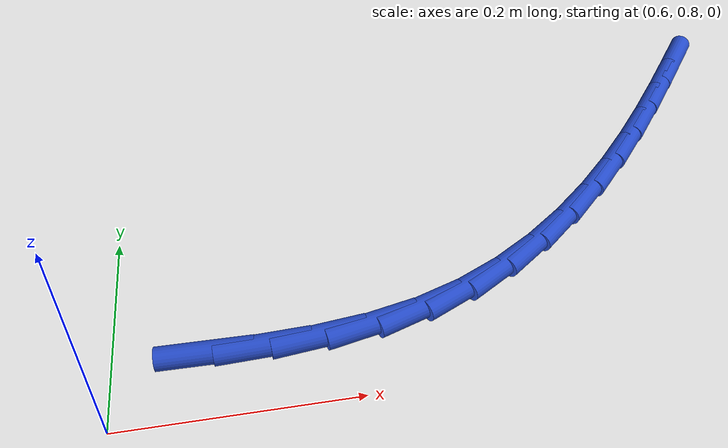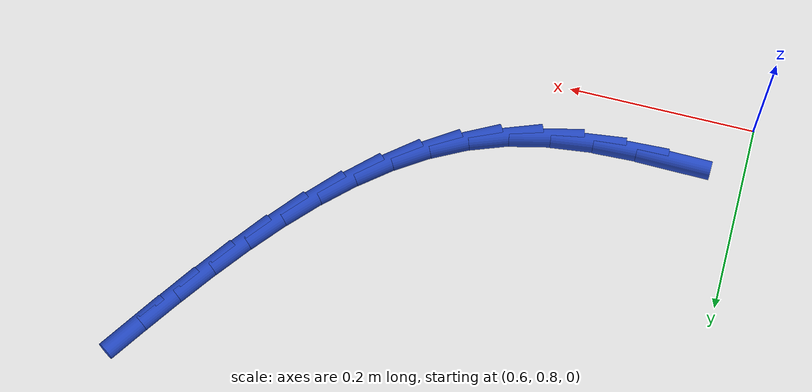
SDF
<sdf version="1.6">
 <world name="default">
  <model name="ground_plane">
   <static>1</static>
   <link name="link">
    <collision name="collision">
     <geometry><plane><normal>0 0 1</normal><size>100 100</size></plane></geometry>
     <surface><friction><ode><mu>100</mu><mu2>50</mu2></ode></friction></surface>
    </collision>
    <visual name="visual">
     <cast_shadows>0</cast_shadows>
     <geometry><plane><normal>0 0 1</normal><size>100 100</size></plane></geometry>
     <material>
      <script><uri>file://media/materials/scripts/gazebo.material</uri><name>Gazebo/WhiteGlow</name></script>
     </material>
    </visual>
   </link>
  </model>
  <model name="line">
   <link name="link_29">
    <pose>0.6757782336025469 0.8566680548892674 0.01 0 1.57 -0.01525781030413903</pose>
    <collision name="collision">
     <geometry><cylinder><radius>0.01</radius><length>0.08</length></cylinder></geometry>
    </collision>
    <visual name="visual">
     <material>
      <script><name>Gazebo/Blue</name><uri>file://media/materials/scripts/gazebo.material</uri></script>
     </material>
     <geometry><cylinder><radius>0.01</radius><length>0.08</length></cylinder></geometry>
    </visual>
   </link>
   <link name="link_30">
    <pose>0.7222221552151991 0.8559593673483314 0.01 0 1.57 0.040140041052352644</pose>
    <collision name="collision">
     <geometry><cylinder><radius>0.01</radius><length>0.08</length></cylinder></geometry>
    </collision>
    <visual name="visual">
     <material>
      <script><name>Gazebo/Blue</name><uri>file://media/materials/scripts/gazebo.material</uri></script>
     </material>
     <geometry><cylinder><radius>0.01</radius><length>0.08</length></cylinder></geometry>
    </visual>
   </link>
   <link name="link_31">
    <pose>0.7677008741108414 0.8577858660627132 0.01 0 1.57 0.11901851240756672</pose>
    <collision name="collision">
     <geometry><cylinder><radius>0.01</radius><length>0.08</length></cylinder></geometry>
    </collision>
    <visual name="visual">
     <material>
      <script><name>Gazebo/Blue</name><uri>file://media/materials/scripts/gazebo.material</uri></script>
     </material>
     <geometry><cylinder><radius>0.01</radius><length>0.08</length></cylinder></geometry>
    </visual>
   </link>
   <link name="link_32">
    <pose>0.8117510935624838 0.8630535541545534 0.01 0 1.57 0.2242295608768374</pose>
    <collision name="collision">
     <geometry><cylinder><radius>0.01</radius><length>0.08</length></cylinder></geometry>
    </collision>
    <visual name="visual">
     <material>
      <script><name>Gazebo/Blue</name><uri>file://media/materials/scripts/gazebo.material</uri></script>
     </material>
     <geometry><cylinder><radius>0.01</radius><length>0.08</length></cylinder></geometry>
    </visual>
   </link>
   <link name="link_33">
    <pose>0.8539095298272169 0.8726684059161346 0.01 0 1.57 0.35042733968477874</pose>
    <collision name="collision">
     <geometry><cylinder><radius>0.01</radius><length>0.08</length></cylinder></geometry>
    </collision>
    <visual name="visual">
     <material>
      <script><name>Gazebo/Blue</name><uri>file://media/materials/scripts/gazebo.material</uri></script>
     </material>
     <geometry><cylinder><radius>0.01</radius><length>0.08</length></cylinder></geometry>
    </visual>
   </link>
   <link name="link_34">
    <pose>0.8938363939251674 0.8872621878568051 0.01 0 1.57 0.47140945866218326</pose>
    <collision name="collision">
     <geometry><cylinder><radius>0.01</radius><length>0.08</length></cylinder></geometry>
    </collision>
    <visual name="visual">
     <material>
      <script><name>Gazebo/Blue</name><uri>file://media/materials/scripts/gazebo.material</uri></script>
     </material>
     <geometry><cylinder><radius>0.01</radius><length>0.08</length></cylinder></geometry>
    </visual>
   </link>
   <link name="link_35">
    <pose>0.9316178357801687 0.9065209117058699 0.01 0 1.57 0.5788615417983258</pose>
    <collision name="collision">
     <geometry><cylinder><radius>0.01</radius><length>0.08</length></cylinder></geometry>
    </collision>
    <visual name="visual">
     <material>
      <script><name>Gazebo/Blue</name><uri>file://media/materials/scripts/gazebo.material</uri></script>
     </material>
     <geometry><cylinder><radius>0.01</radius><length>0.08</length></cylinder></geometry>
    </visual>
   </link>
   <link name="link_36">
    <pose>0.9674317679813005 0.9299268393624787 0.01 0 1.57 0.671433389481857</pose>
    <collision name="collision">
     <geometry><cylinder><radius>0.01</radius><length>0.08</length></cylinder></geometry>
    </collision>
    <visual name="visual">
     <material>
      <script><name>Gazebo/Blue</name><uri>file://media/materials/scripts/gazebo.material</uri></script>
     </material>
     <geometry><cylinder><radius>0.01</radius><length>0.08</length></cylinder></geometry>
    </visual>
   </link>
   <link name="link_37">
    <pose>1.0014561031176432 0.9569622327257811 0.01 0 1.57 0.7492001396432475</pose>
    <collision name="collision">
     <geometry><cylinder><radius>0.01</radius><length>0.08</length></cylinder></geometry>
    </collision>
    <visual name="visual">
     <material>
      <script><name>Gazebo/Blue</name><uri>file://media/materials/scripts/gazebo.material</uri></script>
     </material>
     <geometry><cylinder><radius>0.01</radius><length>0.08</length></cylinder></geometry>
    </visual>
   </link>
   <link name="link_38">
    <pose>1.0338687537782765 0.9871093536949266 0.01 0 1.57 0.8130469851833928</pose>
    <collision name="collision">
     <geometry><cylinder><radius>0.01</radius><length>0.08</length></cylinder></geometry>
    </collision>
    <visual name="visual">
     <material>
      <script><name>Gazebo/Blue</name><uri>file://media/materials/scripts/gazebo.material</uri></script>
     </material>
     <geometry><cylinder><radius>0.01</radius><length>0.08</length></cylinder></geometry>
    </visual>
   </link>
   <link name="link_39">
    <pose>1.0648476325522809 1.019850464169065 0.01 0 1.57 0.8641674827874622</pose>
    <collision name="collision">
     <geometry><cylinder><radius>0.01</radius><length>0.08</length></cylinder></geometry>
    </collision>
    <visual name="visual">
     <material>
      <script><name>Gazebo/Blue</name><uri>file://media/materials/scripts/gazebo.material</uri></script>
     </material>
     <geometry><cylinder><radius>0.01</radius><length>0.08</length></cylinder></geometry>
    </visual>
   </link>
   <link name="link_40">
    <pose>1.0945706520287357 1.0546678260473454 0.01 0 1.57 0.9037397082736272</pose>
    <collision name="collision">
     <geometry><cylinder><radius>0.01</radius><length>0.08</length></cylinder></geometry>
    </collision>
    <visual name="visual">
     <material>
      <script><name>Gazebo/Blue</name><uri>file://media/materials/scripts/gazebo.material</uri></script>
     </material>
     <geometry><cylinder><radius>0.01</radius><length>0.08</length></cylinder></geometry>
    </visual>
   </link>
   <link name="link_41">
    <pose>1.1232157247967214 1.0910437012289176 0.01 0 1.57 0.9327472343714757</pose>
    <collision name="collision">
     <geometry><cylinder><radius>0.01</radius><length>0.08</length></cylinder></geometry>
    </collision>
    <visual name="visual">
     <material>
      <script><name>Gazebo/Blue</name><uri>file://media/materials/scripts/gazebo.material</uri></script>
     </material>
     <geometry><cylinder><radius>0.01</radius><length>0.08</length></cylinder></geometry>
    </visual>
   </link>
   <link name="link_42">
    <pose>1.1509607634453185 1.1284603516129317 0.01 0 1.57 0.9518895597640141</pose>
    <collision name="collision">
     <geometry><cylinder><radius>0.01</radius><length>0.08</length></cylinder></geometry>
    </collision>
    <visual name="visual">
     <material>
      <script><name>Gazebo/Blue</name><uri>file://media/materials/scripts/gazebo.material</uri></script>
     </material>
     <geometry><cylinder><radius>0.01</radius><length>0.08</length></cylinder></geometry>
    </visual>
   </link>
   <link name="link_43">
    <pose>1.1779836805636061 1.1664000390985363 0.01 0 1.57 0.9615360526253954</pose>
    <collision name="collision">
     <geometry><cylinder><radius>0.01</radius><length>0.08</length></cylinder></geometry>
    </collision>
    <visual name="visual">
     <material>
      <script><name>Gazebo/Blue</name><uri>file://media/materials/scripts/gazebo.material</uri></script>
     </material>
     <geometry><cylinder><radius>0.01</radius><length>0.08</length></cylinder></geometry>
    </visual>
   </link>
  </model>
 </world>
</sdf>
